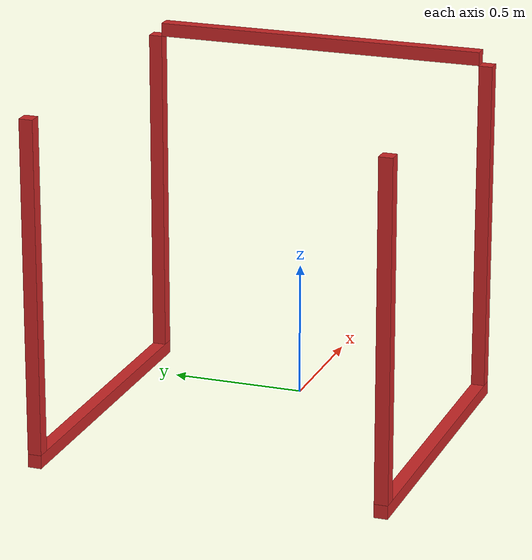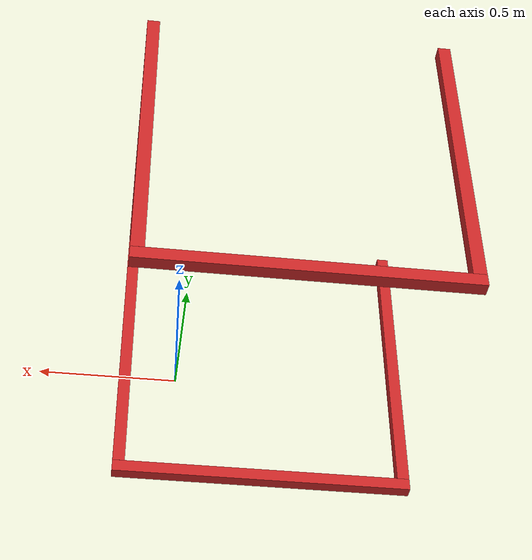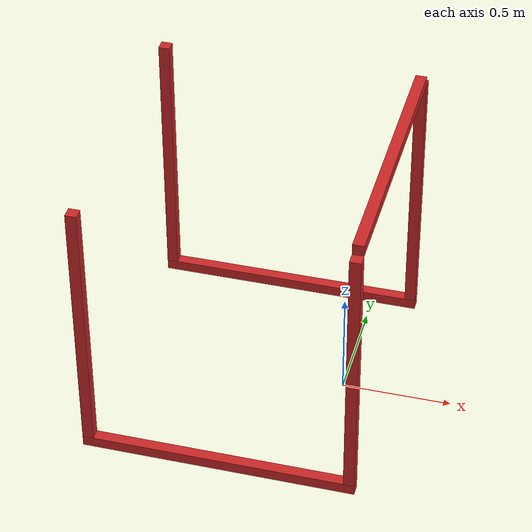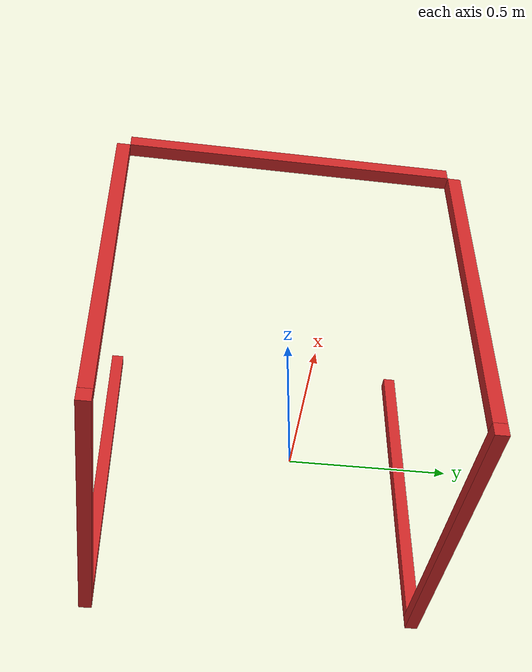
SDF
<?xml version='1.0'?>
<sdf version='1.6'>
  <model name='warehouse_red_box_light'>
    <link name='link_0_clone_clone'>
      <pose frame=''>-0.407063 0.632458 0.03 0 -0 1.5707</pose>
      <inertial>
        <mass>1</mass>
        <inertia>
          <ixx>0.166667</ixx>
          <ixy>0</ixy>
          <ixz>0</ixz>
          <iyy>0.166667</iyy>
          <iyz>0</iyz>
          <izz>0.166667</izz>
        </inertia>
        <pose frame=''>0 0 0 0 -0 0</pose>
      </inertial>
      <self_collide>0</self_collide>
      <kinematic>0</kinematic>
      <visual name='visual'>
        <pose frame=''>0 0 0 0 -0 0</pose>
        <geometry>
          <box>
            <size>0.05 1.23 0.05</size>
          </box>
        </geometry>
        <material>
          <lighting>1</lighting>
          <script>
            <uri>file://media/materials/scripts/gazebo.material</uri>
            <name>Gazebo/Red</name>
          </script>
          <ambient>1 0 0 0</ambient>
          <diffuse>1 0 0 0</diffuse>
          <specular>0.1 0.1 0.1 1</specular>
          <emissive>0 0 0 1</emissive>
          <shader type='vertex'>
            <normal_map>__default__</normal_map>
          </shader>
        </material>
        <cast_shadows>1</cast_shadows>
        <transparency>0</transparency>
      </visual>
      <collision name='collision'>
        <laser_retro>0</laser_retro>
        <max_contacts>10</max_contacts>
        <pose frame=''>0 0 0 0 -0 0</pose>
        <geometry>
          <box>
            <size>0.05 1.23 0.05</size>
          </box>
        </geometry>
        <surface>
          <friction>
            <ode>
              <mu>1</mu>
              <mu2>1</mu2>
              <fdir1>0 0 0</fdir1>
              <slip1>0</slip1>
              <slip2>0</slip2>
            </ode>
            <torsional>
              <coefficient>1</coefficient>
              <patch_radius>0</patch_radius>
              <surface_radius>0</surface_radius>
              <use_patch_radius>1</use_patch_radius>
              <ode>
                <slip>0</slip>
              </ode>
            </torsional>
          </friction>
          <bounce>
            <restitution_coefficient>0</restitution_coefficient>
            <threshold>1e+06</threshold>
          </bounce>
          <contact>
            <collide_without_contact>0</collide_without_contact>
            <collide_without_contact_bitmask>1</collide_without_contact_bitmask>
            <collide_bitmask>1</collide_bitmask>
            <ode>
              <soft_cfm>0</soft_cfm>
              <soft_erp>0.2</soft_erp>
              <kp>1e+13</kp>
              <kd>1</kd>
              <max_vel>0.01</max_vel>
              <min_depth>0</min_depth>
            </ode>
            <bullet>
              <split_impulse>1</split_impulse>
              <split_impulse_penetration_threshold>-0.01</split_impulse_penetration_threshold>
              <soft_cfm>0</soft_cfm>
              <soft_erp>0.2</soft_erp>
              <kp>1e+13</kp>
              <kd>1</kd>
            </bullet>
          </contact>
        </surface>
      </collision>
    </link>
    <link name='link_0_clone_clone_2_clone'>
      <pose frame=''>0.182936 -0.007504 1.31001 0 -6e-06 -1.8e-05</pose>
      <inertial>
        <mass>1</mass>
        <inertia>
          <ixx>0.166667</ixx>
          <ixy>0</ixy>
          <ixz>0</ixz>
          <iyy>0.166667</iyy>
          <iyz>0</iyz>
          <izz>0.166667</izz>
        </inertia>
        <pose frame=''>0 0 0 0 -0 0</pose>
      </inertial>
      <self_collide>0</self_collide>
      <kinematic>0</kinematic>
      <visual name='visual'>
        <pose frame=''>0 0 0 0 -0 0</pose>
        <geometry>
          <box>
            <size>0.05 1.23 0.05</size>
          </box>
        </geometry>
        <material>
          <lighting>1</lighting>
          <script>
            <uri>file://media/materials/scripts/gazebo.material</uri>
            <name>Gazebo/Red</name>
          </script>
          <ambient>1 0 0 0</ambient>
          <diffuse>1 0 0 0</diffuse>
          <specular>0.1 0.1 0.1 1</specular>
          <emissive>0 0 0 1</emissive>
          <shader type='vertex'>
            <normal_map>__default__</normal_map>
          </shader>
        </material>
        <cast_shadows>1</cast_shadows>
        <transparency>0</transparency>
      </visual>
      <collision name='collision'>
        <laser_retro>0</laser_retro>
        <max_contacts>10</max_contacts>
        <pose frame=''>0 0 0 0 -0 0</pose>
        <geometry>
          <box>
            <size>0.05 1.23 0.05</size>
          </box>
        </geometry>
        <surface>
          <friction>
            <ode>
              <mu>1</mu>
              <mu2>1</mu2>
              <fdir1>0 0 0</fdir1>
              <slip1>0</slip1>
              <slip2>0</slip2>
            </ode>
            <torsional>
              <coefficient>1</coefficient>
              <patch_radius>0</patch_radius>
              <surface_radius>0</surface_radius>
              <use_patch_radius>1</use_patch_radius>
              <ode>
                <slip>0</slip>
              </ode>
            </torsional>
          </friction>
          <bounce>
            <restitution_coefficient>0</restitution_coefficient>
            <threshold>1e+06</threshold>
          </bounce>
          <contact>
            <collide_without_contact>0</collide_without_contact>
            <collide_without_contact_bitmask>1</collide_without_contact_bitmask>
            <collide_bitmask>1</collide_bitmask>
            <ode>
              <soft_cfm>0</soft_cfm>
              <soft_erp>0.2</soft_erp>
              <kp>1e+13</kp>
              <kd>1</kd>
              <max_vel>0.01</max_vel>
              <min_depth>0</min_depth>
            </ode>
            <bullet>
              <split_impulse>1</split_impulse>
              <split_impulse_penetration_threshold>-0.01</split_impulse_penetration_threshold>
              <soft_cfm>0</soft_cfm>
              <soft_erp>0.2</soft_erp>
              <kp>1e+13</kp>
              <kd>1</kd>
            </bullet>
          </contact>
        </surface>
      </collision>
    </link>
    <link name='link_0_clone_clone_clone'>
      <pose frame=''>-0.407063 -0.64766 0.03 0 -0 1.5707</pose>
      <inertial>
        <mass>1</mass>
        <inertia>
          <ixx>0.166667</ixx>
          <ixy>0</ixy>
          <ixz>0</ixz>
          <iyy>0.166667</iyy>
          <iyz>0</iyz>
          <izz>0.166667</izz>
        </inertia>
        <pose frame=''>0 0 0 0 -0 0</pose>
      </inertial>
      <self_collide>0</self_collide>
      <kinematic>0</kinematic>
      <visual name='visual'>
        <pose frame=''>0 0 0 0 -0 0</pose>
        <geometry>
          <box>
            <size>0.05 1.23 0.05</size>
          </box>
        </geometry>
        <material>
          <lighting>1</lighting>
          <script>
            <uri>file://media/materials/scripts/gazebo.material</uri>
            <name>Gazebo/Red</name>
          </script>
          <ambient>1 0 0 0</ambient>
          <diffuse>1 0 0 0</diffuse>
          <specular>0.1 0.1 0.1 1</specular>
          <emissive>0 0 0 1</emissive>
          <shader type='vertex'>
            <normal_map>__default__</normal_map>
          </shader>
        </material>
        <cast_shadows>1</cast_shadows>
        <transparency>0</transparency>
      </visual>
      <collision name='collision'>
        <laser_retro>0</laser_retro>
        <max_contacts>10</max_contacts>
        <pose frame=''>0 0 0 0 -0 0</pose>
        <geometry>
          <box>
            <size>0.05 1.23 0.05</size>
          </box>
        </geometry>
        <surface>
          <friction>
            <ode>
              <mu>1</mu>
              <mu2>1</mu2>
              <fdir1>0 0 0</fdir1>
              <slip1>0</slip1>
              <slip2>0</slip2>
            </ode>
            <torsional>
              <coefficient>1</coefficient>
              <patch_radius>0</patch_radius>
              <surface_radius>0</surface_radius>
              <use_patch_radius>1</use_patch_radius>
              <ode>
                <slip>0</slip>
              </ode>
            </torsional>
          </friction>
          <bounce>
            <restitution_coefficient>0</restitution_coefficient>
            <threshold>1e+06</threshold>
          </bounce>
          <contact>
            <collide_without_contact>0</collide_without_contact>
            <collide_without_contact_bitmask>1</collide_without_contact_bitmask>
            <collide_bitmask>1</collide_bitmask>
            <ode>
              <soft_cfm>0</soft_cfm>
              <soft_erp>0.2</soft_erp>
              <kp>1e+13</kp>
              <kd>1</kd>
              <max_vel>0.01</max_vel>
              <min_depth>0</min_depth>
            </ode>
            <bullet>
              <split_impulse>1</split_impulse>
              <split_impulse_penetration_threshold>-0.01</split_impulse_penetration_threshold>
              <soft_cfm>0</soft_cfm>
              <soft_erp>0.2</soft_erp>
              <kp>1e+13</kp>
              <kd>1</kd>
            </bullet>
          </contact>
        </surface>
      </collision>
    </link>
    <link name='link_0_clone_clone_clone_clone'>
      <pose frame=''>0.182938 -0.647558 0.670002 1.5707 -0 0</pose>
      <inertial>
        <mass>1</mass>
        <inertia>
          <ixx>0.166667</ixx>
          <ixy>0</ixy>
          <ixz>0</ixz>
          <iyy>0.166667</iyy>
          <iyz>0</iyz>
          <izz>0.166667</izz>
        </inertia>
        <pose frame=''>0 0 0 0 -0 0</pose>
      </inertial>
      <self_collide>0</self_collide>
      <kinematic>0</kinematic>
      <visual name='visual'>
        <pose frame=''>0 0 0 0 -0 0</pose>
        <geometry>
          <box>
            <size>0.05 1.23 0.05</size>
          </box>
        </geometry>
        <material>
          <lighting>1</lighting>
          <script>
            <uri>file://media/materials/scripts/gazebo.material</uri>
            <name>Gazebo/Red</name>
          </script>
          <ambient>1 0 0 0</ambient>
          <diffuse>1 0 0 0</diffuse>
          <specular>0.1 0.1 0.1 1</specular>
          <emissive>0 0 0 1</emissive>
          <shader type='vertex'>
            <normal_map>__default__</normal_map>
          </shader>
        </material>
        <cast_shadows>1</cast_shadows>
        <transparency>0</transparency>
      </visual>
      <collision name='collision'>
        <laser_retro>0</laser_retro>
        <max_contacts>10</max_contacts>
        <pose frame=''>0 0 0 0 -0 0</pose>
        <geometry>
          <box>
            <size>0.05 1.23 0.05</size>
          </box>
        </geometry>
        <surface>
          <friction>
            <ode>
              <mu>1</mu>
              <mu2>1</mu2>
              <fdir1>0 0 0</fdir1>
              <slip1>0</slip1>
              <slip2>0</slip2>
            </ode>
            <torsional>
              <coefficient>1</coefficient>
              <patch_radius>0</patch_radius>
              <surface_radius>0</surface_radius>
              <use_patch_radius>1</use_patch_radius>
              <ode>
                <slip>0</slip>
              </ode>
            </torsional>
          </friction>
          <bounce>
            <restitution_coefficient>0</restitution_coefficient>
            <threshold>1e+06</threshold>
          </bounce>
          <contact>
            <collide_without_contact>0</collide_without_contact>
            <collide_without_contact_bitmask>1</collide_without_contact_bitmask>
            <collide_bitmask>1</collide_bitmask>
            <ode>
              <soft_cfm>0</soft_cfm>
              <soft_erp>0.2</soft_erp>
              <kp>1e+13</kp>
              <kd>1</kd>
              <max_vel>0.01</max_vel>
              <min_depth>0</min_depth>
            </ode>
            <bullet>
              <split_impulse>1</split_impulse>
              <split_impulse_penetration_threshold>-0.01</split_impulse_penetration_threshold>
              <soft_cfm>0</soft_cfm>
              <soft_erp>0.2</soft_erp>
              <kp>1e+13</kp>
              <kd>1</kd>
            </bullet>
          </contact>
        </surface>
      </collision>
    </link>
    <link name='link_0_clone_clone_clone_clone_clone'>
      <pose frame=''>0.182944 0.632559 0.670002 1.5707 0 0.00017</pose>
      <inertial>
        <mass>1</mass>
        <inertia>
          <ixx>0.166667</ixx>
          <ixy>0</ixy>
          <ixz>0</ixz>
          <iyy>0.166667</iyy>
          <iyz>0</iyz>
          <izz>0.166667</izz>
        </inertia>
        <pose frame=''>0 0 0 0 -0 0</pose>
      </inertial>
      <self_collide>0</self_collide>
      <kinematic>0</kinematic>
      <visual name='visual'>
        <pose frame=''>0 0 0 0 -0 0</pose>
        <geometry>
          <box>
            <size>0.05 1.23 0.05</size>
          </box>
        </geometry>
        <material>
          <lighting>1</lighting>
          <script>
            <uri>file://media/materials/scripts/gazebo.material</uri>
            <name>Gazebo/Red</name>
          </script>
          <ambient>1 0 0 0</ambient>
          <diffuse>1 0 0 0</diffuse>
          <specular>0.1 0.1 0.1 1</specular>
          <emissive>0 0 0 1</emissive>
          <shader type='vertex'>
            <normal_map>__default__</normal_map>
          </shader>
        </material>
        <cast_shadows>1</cast_shadows>
        <transparency>0</transparency>
      </visual>
      <collision name='collision'>
        <laser_retro>0</laser_retro>
        <max_contacts>10</max_contacts>
        <pose frame=''>0 0 0 0 -0 0</pose>
        <geometry>
          <box>
            <size>0.05 1.23 0.05</size>
          </box>
        </geometry>
        <surface>
          <friction>
            <ode>
              <mu>1</mu>
              <mu2>1</mu2>
              <fdir1>0 0 0</fdir1>
              <slip1>0</slip1>
              <slip2>0</slip2>
            </ode>
            <torsional>
              <coefficient>1</coefficient>
              <patch_radius>0</patch_radius>
              <surface_radius>0</surface_radius>
              <use_patch_radius>1</use_patch_radius>
              <ode>
                <slip>0</slip>
              </ode>
            </torsional>
          </friction>
          <bounce>
            <restitution_coefficient>0</restitution_coefficient>
            <threshold>1e+06</threshold>
          </bounce>
          <contact>
            <collide_without_contact>0</collide_without_contact>
            <collide_without_contact_bitmask>1</collide_without_contact_bitmask>
            <collide_bitmask>1</collide_bitmask>
            <ode>
              <soft_cfm>0</soft_cfm>
              <soft_erp>0.2</soft_erp>
              <kp>1e+13</kp>
              <kd>1</kd>
              <max_vel>0.01</max_vel>
              <min_depth>0</min_depth>
            </ode>
            <bullet>
              <split_impulse>1</split_impulse>
              <split_impulse_penetration_threshold>-0.01</split_impulse_penetration_threshold>
              <soft_cfm>0</soft_cfm>
              <soft_erp>0.2</soft_erp>
              <kp>1e+13</kp>
              <kd>1</kd>
            </bullet>
          </contact>
        </surface>
      </collision>
    </link>
    <link name='link_0_clone_clone_clone_clone_clone_0'>
      <pose frame=''>-0.997071 0.632359 0.670003 1.5707 0 0.00017</pose>
      <inertial>
        <mass>1</mass>
        <inertia>
          <ixx>0.166667</ixx>
          <ixy>0</ixy>
          <ixz>0</ixz>
          <iyy>0.166667</iyy>
          <iyz>0</iyz>
          <izz>0.166667</izz>
        </inertia>
        <pose frame=''>0 0 0 0 -0 0</pose>
      </inertial>
      <self_collide>0</self_collide>
      <kinematic>0</kinematic>
      <visual name='visual'>
        <pose frame=''>0 0 0 0 -0 0</pose>
        <geometry>
          <box>
            <size>0.05 1.23 0.05</size>
          </box>
        </geometry>
        <material>
          <lighting>1</lighting>
          <script>
            <uri>file://media/materials/scripts/gazebo.material</uri>
            <name>Gazebo/Red</name>
          </script>
          <ambient>1 0 0 0</ambient>
          <diffuse>1 0 0 0</diffuse>
          <specular>0.1 0.1 0.1 1</specular>
          <emissive>0 0 0 1</emissive>
          <shader type='vertex'>
            <normal_map>__default__</normal_map>
          </shader>
        </material>
        <cast_shadows>1</cast_shadows>
        <transparency>0</transparency>
      </visual>
      <collision name='collision'>
        <laser_retro>0</laser_retro>
        <max_contacts>10</max_contacts>
        <pose frame=''>0 0 0 0 -0 0</pose>
        <geometry>
          <box>
            <size>0.05 1.23 0.05</size>
          </box>
        </geometry>
        <surface>
          <friction>
            <ode>
              <mu>1</mu>
              <mu2>1</mu2>
              <fdir1>0 0 0</fdir1>
              <slip1>0</slip1>
              <slip2>0</slip2>
            </ode>
            <torsional>
              <coefficient>1</coefficient>
              <patch_radius>0</patch_radius>
              <surface_radius>0</surface_radius>
              <use_patch_radius>1</use_patch_radius>
              <ode>
                <slip>0</slip>
              </ode>
            </torsional>
          </friction>
          <bounce>
            <restitution_coefficient>0</restitution_coefficient>
            <threshold>1e+06</threshold>
          </bounce>
          <contact>
            <collide_without_contact>0</collide_without_contact>
            <collide_without_contact_bitmask>1</collide_without_contact_bitmask>
            <collide_bitmask>1</collide_bitmask>
            <ode>
              <soft_cfm>0</soft_cfm>
              <soft_erp>0.2</soft_erp>
              <kp>1e+13</kp>
              <kd>1</kd>
              <max_vel>0.01</max_vel>
              <min_depth>0</min_depth>
            </ode>
            <bullet>
              <split_impulse>1</split_impulse>
              <split_impulse_penetration_threshold>-0.01</split_impulse_penetration_threshold>
              <soft_cfm>0</soft_cfm>
              <soft_erp>0.2</soft_erp>
              <kp>1e+13</kp>
              <kd>1</kd>
            </bullet>
          </contact>
        </surface>
      </collision>
    </link>
    <link name='link_0_clone_clone_clone_clone_clone_1'>
      <pose frame=''>-0.997071 -0.647758 0.670003 1.5707 0 0.00017</pose>
      <inertial>
        <mass>1</mass>
        <inertia>
          <ixx>0.166667</ixx>
          <ixy>0</ixy>
          <ixz>0</ixz>
          <iyy>0.166667</iyy>
          <iyz>0</iyz>
          <izz>0.166667</izz>
        </inertia>
        <pose frame=''>0 0 0 0 -0 0</pose>
      </inertial>
      <self_collide>0</self_collide>
      <kinematic>0</kinematic>
      <visual name='visual'>
        <pose frame=''>0 0 0 0 -0 0</pose>
        <geometry>
          <box>
            <size>0.05 1.23 0.05</size>
          </box>
        </geometry>
        <material>
          <lighting>1</lighting>
          <script>
            <uri>file://media/materials/scripts/gazebo.material</uri>
            <name>Gazebo/Red</name>
          </script>
          <ambient>1 0 0 0</ambient>
          <diffuse>1 0 0 0</diffuse>
          <specular>0.1 0.1 0.1 1</specular>
          <emissive>0 0 0 1</emissive>
          <shader type='vertex'>
            <normal_map>__default__</normal_map>
          </shader>
        </material>
        <cast_shadows>1</cast_shadows>
        <transparency>0</transparency>
      </visual>
      <collision name='collision'>
        <laser_retro>0</laser_retro>
        <max_contacts>10</max_contacts>
        <pose frame=''>0 0 0 0 -0 0</pose>
        <geometry>
          <box>
            <size>0.05 1.23 0.05</size>
          </box>
        </geometry>
        <surface>
          <friction>
            <ode>
              <mu>1</mu>
              <mu2>1</mu2>
              <fdir1>0 0 0</fdir1>
              <slip1>0</slip1>
              <slip2>0</slip2>
            </ode>
            <torsional>
              <coefficient>1</coefficient>
              <patch_radius>0</patch_radius>
              <surface_radius>0</surface_radius>
              <use_patch_radius>1</use_patch_radius>
              <ode>
                <slip>0</slip>
              </ode>
            </torsional>
          </friction>
          <bounce>
            <restitution_coefficient>0</restitution_coefficient>
            <threshold>1e+06</threshold>
          </bounce>
          <contact>
            <collide_without_contact>0</collide_without_contact>
            <collide_without_contact_bitmask>1</collide_without_contact_bitmask>
            <collide_bitmask>1</collide_bitmask>
            <ode>
              <soft_cfm>0</soft_cfm>
              <soft_erp>0.2</soft_erp>
              <kp>1e+13</kp>
              <kd>1</kd>
              <max_vel>0.01</max_vel>
              <min_depth>0</min_depth>
            </ode>
            <bullet>
              <split_impulse>1</split_impulse>
              <split_impulse_penetration_threshold>-0.01</split_impulse_penetration_threshold>
              <soft_cfm>0</soft_cfm>
              <soft_erp>0.2</soft_erp>
              <kp>1e+13</kp>
              <kd>1</kd>
            </bullet>
          </contact>
        </surface>
      </collision>
    </link>
    <joint name='link_0_clone_clone_2_clone_JOINT_17' type='fixed'>
      <parent>link_0_clone_clone_2_clone</parent>
      <child>link_0_clone_clone_clone_clone_clone</child>
      <pose frame=''>0 0 0 0 -0 0</pose>
      <physics>
        <ode>
          <limit>
            <cfm>0</cfm>
            <erp>0.2</erp>
          </limit>
          <suspension>
            <cfm>0</cfm>
            <erp>0.2</erp>
          </suspension>
        </ode>
      </physics>
    </joint>
    <joint name='link_0_clone_clone_2_clone_JOINT_19' type='fixed'>
      <parent>link_0_clone_clone_2_clone</parent>
      <child>link_0_clone_clone_clone_clone</child>
      <pose frame=''>0 0 0 0 -0 0</pose>
      <physics>
        <ode>
          <limit>
            <cfm>0</cfm>
            <erp>0.2</erp>
          </limit>
          <suspension>
            <cfm>0</cfm>
            <erp>0.2</erp>
          </suspension>
        </ode>
      </physics>
    </joint>
    <joint name='link_0_clone_clone_JOINT_2' type='fixed'>
      <parent>link_0_clone_clone</parent>
      <child>link_0_clone_clone_clone_clone_clone</child>
      <pose frame=''>0 0 0 0 -0 0</pose>
      <physics>
        <ode>
          <limit>
            <cfm>0</cfm>
            <erp>0.2</erp>
          </limit>
          <suspension>
            <cfm>0</cfm>
            <erp>0.2</erp>
          </suspension>
        </ode>
      </physics>
    </joint>
    <joint name='link_0_clone_clone_JOINT_4' type='fixed'>
      <parent>link_0_clone_clone</parent>
      <child>link_0_clone_clone_clone_clone_clone_0</child>
      <pose frame=''>0 0 0 0 -0 0</pose>
      <physics>
        <ode>
          <limit>
            <cfm>0</cfm>
            <erp>0.2</erp>
          </limit>
          <suspension>
            <cfm>0</cfm>
            <erp>0.2</erp>
          </suspension>
        </ode>
      </physics>
    </joint>
    <joint name='link_0_clone_clone_clone_JOINT_0' type='fixed'>
      <parent>link_0_clone_clone_clone</parent>
      <child>link_0_clone_clone_clone_clone</child>
      <pose frame=''>0 0 0 0 -0 0</pose>
      <physics>
        <ode>
          <limit>
            <cfm>0</cfm>
            <erp>0.2</erp>
          </limit>
          <suspension>
            <cfm>0</cfm>
            <erp>0.2</erp>
          </suspension>
        </ode>
      </physics>
    </joint>
    <joint name='link_0_clone_clone_clone_JOINT_9' type='fixed'>
      <parent>link_0_clone_clone_clone</parent>
      <child>link_0_clone_clone_clone_clone_clone_1</child>
      <pose frame=''>0 0 0 0 -0 0</pose>
      <physics>
        <ode>
          <limit>
            <cfm>0</cfm>
            <erp>0.2</erp>
          </limit>
          <suspension>
            <cfm>0</cfm>
            <erp>0.2</erp>
          </suspension>
        </ode>
      </physics>
    </joint>
    <joint name='link_0_clone_clone_clone_clone_JOINT_18' type='fixed'>
      <parent>link_0_clone_clone_clone_clone</parent>
      <child>link_0_clone_clone_2_clone</child>
      <pose frame=''>0 0 0 0 -0 0</pose>
      <physics>
        <ode>
          <limit>
            <cfm>0</cfm>
            <erp>0.2</erp>
          </limit>
          <suspension>
            <cfm>0</cfm>
            <erp>0.2</erp>
          </suspension>
        </ode>
      </physics>
    </joint>
    <joint name='link_0_clone_clone_clone_clone_JOINT_1' type='fixed'>
      <parent>link_0_clone_clone_clone_clone</parent>
      <child>link_0_clone_clone_clone</child>
      <pose frame=''>0 0 0 0 -0 0</pose>
      <physics>
        <ode>
          <limit>
            <cfm>0</cfm>
            <erp>0.2</erp>
          </limit>
          <suspension>
            <cfm>0</cfm>
            <erp>0.2</erp>
          </suspension>
        </ode>
      </physics>
    </joint>
    <joint name='link_0_clone_clone_clone_clone_clone_0_JOINT_6' type='fixed'>
      <parent>link_0_clone_clone_clone_clone_clone_0</parent>
      <child>link_0_clone_clone</child>
      <pose frame=''>0 0 0 0 -0 0</pose>
      <physics>
        <ode>
          <limit>
            <cfm>0</cfm>
            <erp>0.2</erp>
          </limit>
          <suspension>
            <cfm>0</cfm>
            <erp>0.2</erp>
          </suspension>
        </ode>
      </physics>
    </joint>
    <joint name='link_0_clone_clone_clone_clone_clone_1_JOINT_10' type='fixed'>
      <parent>link_0_clone_clone_clone_clone_clone_1</parent>
      <child>link_0_clone_clone_clone</child>
      <pose frame=''>0 0 0 0 -0 0</pose>
      <physics>
        <ode>
          <limit>
            <cfm>0</cfm>
            <erp>0.2</erp>
          </limit>
          <suspension>
            <cfm>0</cfm>
            <erp>0.2</erp>
          </suspension>
        </ode>
      </physics>
    </joint>
    <joint name='link_0_clone_clone_clone_clone_clone_JOINT_16' type='fixed'>
      <parent>link_0_clone_clone_clone_clone_clone</parent>
      <child>link_0_clone_clone_2_clone</child>
      <pose frame=''>0 0 0 0 -0 0</pose>
      <physics>
        <ode>
          <limit>
            <cfm>0</cfm>
            <erp>0.2</erp>
          </limit>
          <suspension>
            <cfm>0</cfm>
            <erp>0.2</erp>
          </suspension>
        </ode>
      </physics>
    </joint>
    <joint name='link_0_clone_clone_clone_clone_clone_JOINT_3' type='fixed'>
      <parent>link_0_clone_clone_clone_clone_clone</parent>
      <child>link_0_clone_clone</child>
      <pose frame=''>0 0 0 0 -0 0</pose>
      <physics>
        <ode>
          <limit>
            <cfm>0</cfm>
            <erp>0.2</erp>
          </limit>
          <suspension>
            <cfm>0</cfm>
            <erp>0.2</erp>
          </suspension>
        </ode>
      </physics>
    </joint>
    <static>0</static>
    <allow_auto_disable>1</allow_auto_disable>
  </model>
</sdf>
